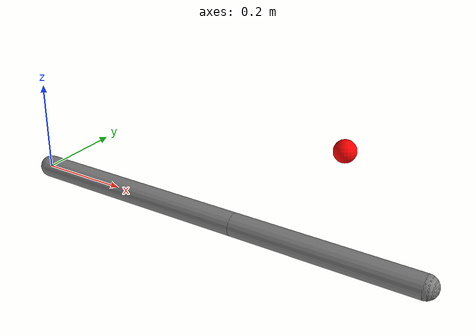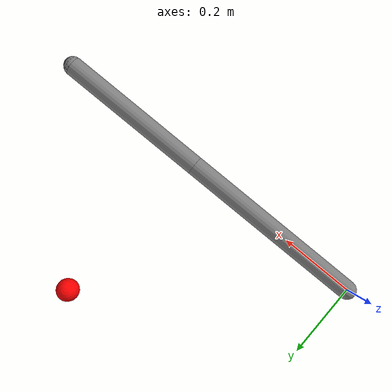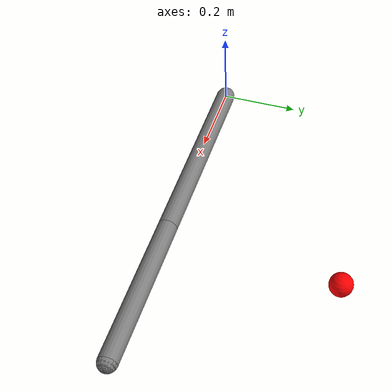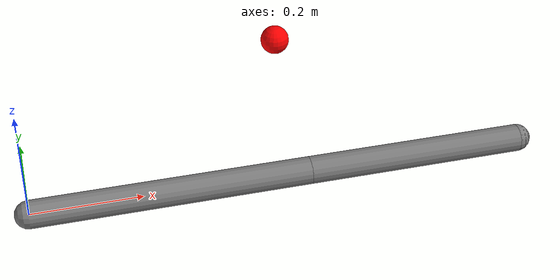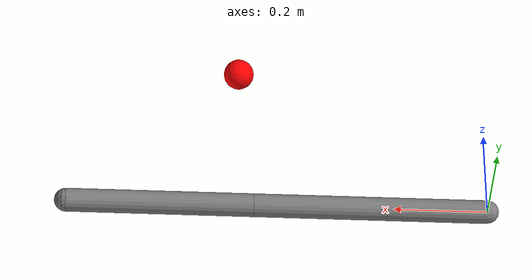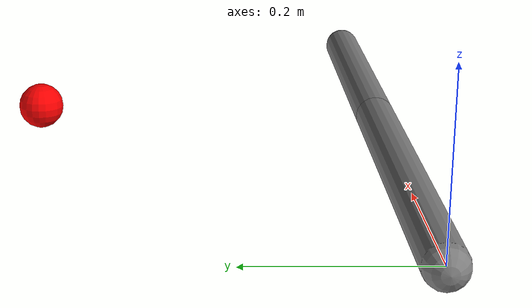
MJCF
<mujoco model="damped IK">
  <option gravity="0 0 0"/>
  <worldbody>
    <body>
      <joint axis="0 0 1"/>
      <geom type="capsule" fromto="0 0 0 .5 0 0" size=".025"/>
      <body pos=".5 0 0">
        <joint axis="0 0 1"/>
        <geom type="capsule" fromto="0 0 0 .4 0 0" size=".025"/>
        <site name="tcp" pos=".4 0 0" size=".025"/>
      </body>
    </body>
    <site name="target" pos=".55 .45 0" type="sphere" size=".03" rgba="1 0 0 1"/>
  </worldbody>
</mujoco>
